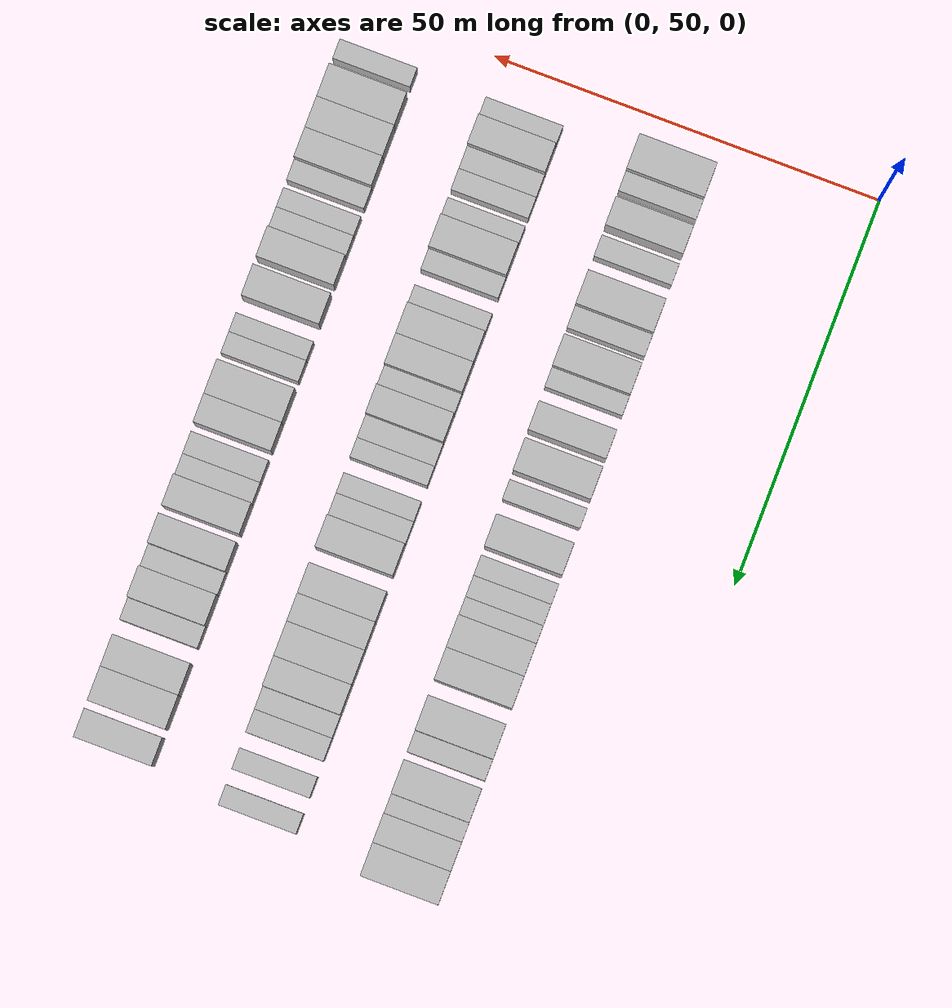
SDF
<sdf version="1.6">
 <world name="default">
  <model name="building_65">
   <static>1</static>
   <pose>25.0000 55.7712 0 0.000000 0.000000 0.000000</pose>
   <link name="link">
    <pose>0 0 4.50 0 0 0</pose>
    <collision name="collision"><geometry><box><size>10.0000 4.4981 9.0000</size></box></geometry></collision>
    <visual name="visual">
     <cast_shadows>0</cast_shadows>
     <geometry><box><size>10.0000 4.4981 9.0000</size></box></geometry>
     <material>
      <script>
       <uri>model://HANNAS_wall/materials/scripts</uri>
       <uri>model://HANNAS_wall/materials/textures</uri>
       <name>vrc/HANNAS_wall</name>
      </script>
     </material>
    </visual>
   </link>
  </model>
  <model name="building_66">
   <static>1</static>
   <pose>25.0000 59.3124 0 0.000000 0.000000 0.000000</pose>
   <link name="link">
    <pose>0 0 3.00 0 0 0</pose>
    <collision name="collision"><geometry><box><size>10.0000 2.5843 6.0000</size></box></geometry></collision>
    <visual name="visual">
     <cast_shadows>0</cast_shadows>
     <geometry><box><size>10.0000 2.5843 6.0000</size></box></geometry>
     <material>
      <script>
       <uri>model://HANNAS_wall/materials/scripts</uri>
       <uri>model://HANNAS_wall/materials/textures</uri>
       <name>vrc/HANNAS_wall</name>
      </script>
     </material>
    </visual>
   </link>
  </model>
  <model name="building_67">
   <static>1</static>
   <pose>25.0000 63.4553 0 0.000000 0.000000 0.000000</pose>
   <link name="link">
    <pose>0 0 4.50 0 0 0</pose>
    <collision name="collision"><geometry><box><size>10.0000 3.7016 9.0000</size></box></geometry></collision>
    <visual name="visual">
     <cast_shadows>0</cast_shadows>
     <geometry><box><size>10.0000 3.7016 9.0000</size></box></geometry>
     <material>
      <script>
       <uri>model://HANNAS_wall/materials/scripts</uri>
       <uri>model://HANNAS_wall/materials/textures</uri>
       <name>vrc/HANNAS_wall</name>
      </script>
     </material>
    </visual>
   </link>
  </model>
  <model name="building_68">
   <static>1</static>
   <pose>25.0000 67.6899 0 0.000000 0.000000 0.000000</pose>
   <link name="link">
    <pose>0 0 3.00 0 0 0</pose>
    <collision name="collision"><geometry><box><size>10.0000 2.7675 6.0000</size></box></geometry></collision>
    <visual name="visual">
     <cast_shadows>0</cast_shadows>
     <geometry><box><size>10.0000 2.7675 6.0000</size></box></geometry>
     <material>
      <script>
       <uri>model://HANNAS_wall/materials/scripts</uri>
       <uri>model://HANNAS_wall/materials/textures</uri>
       <name>vrc/HANNAS_wall</name>
      </script>
     </material>
    </visual>
   </link>
  </model>
  <model name="building_69">
   <static>1</static>
   <pose>25.0000 73.2490 0 0.000000 0.000000 0.000000</pose>
   <link name="link">
    <pose>0 0 4.50 0 0 0</pose>
    <collision name="collision"><geometry><box><size>10.0000 4.3506 9.0000</size></box></geometry></collision>
    <visual name="visual">
     <cast_shadows>0</cast_shadows>
     <geometry><box><size>10.0000 4.3506 9.0000</size></box></geometry>
     <material>
      <script>
       <uri>model://HANNAS_wall/materials/scripts</uri>
       <uri>model://HANNAS_wall/materials/textures</uri>
       <name>vrc/HANNAS_wall</name>
      </script>
     </material>
    </visual>
   </link>
  </model>
  <model name="building_70">
   <static>1</static>
   <pose>25.0000 76.8722 0 0.000000 0.000000 0.000000</pose>
   <link name="link">
    <pose>0 0 3.00 0 0 0</pose>
    <collision name="collision"><geometry><box><size>10.0000 2.8959 6.0000</size></box></geometry></collision>
    <visual name="visual">
     <cast_shadows>0</cast_shadows>
     <geometry><box><size>10.0000 2.8959 6.0000</size></box></geometry>
     <material>
      <script>
       <uri>model://HANNAS_wall/materials/scripts</uri>
       <uri>model://HANNAS_wall/materials/textures</uri>
       <name>vrc/HANNAS_wall</name>
      </script>
     </material>
    </visual>
   </link>
  </model>
  <model name="building_71">
   <static>1</static>
   <pose>25.0000 81.3521 0 0.000000 0.000000 0.000000</pose>
   <link name="link">
    <pose>0 0 4.50 0 0 0</pose>
    <collision name="collision"><geometry><box><size>10.0000 4.0638 9.0000</size></box></geometry></collision>
    <visual name="visual">
     <cast_shadows>0</cast_shadows>
     <geometry><box><size>10.0000 4.0638 9.0000</size></box></geometry>
     <material>
      <script>
       <uri>model://HANNAS_wall/materials/scripts</uri>
       <uri>model://HANNAS_wall/materials/textures</uri>
       <name>vrc/HANNAS_wall</name>
      </script>
     </material>
    </visual>
   </link>
  </model>
  <model name="building_72">
   <static>1</static>
   <pose>25.0000 84.6595 0 0.000000 0.000000 0.000000</pose>
   <link name="link">
    <pose>0 0 3.00 0 0 0</pose>
    <collision name="collision"><geometry><box><size>10.0000 2.5509 6.0000</size></box></geometry></collision>
    <visual name="visual">
     <cast_shadows>0</cast_shadows>
     <geometry><box><size>10.0000 2.5509 6.0000</size></box></geometry>
     <material>
      <script>
       <uri>model://HANNAS_wall/materials/scripts</uri>
       <uri>model://HANNAS_wall/materials/textures</uri>
       <name>vrc/HANNAS_wall</name>
      </script>
     </material>
    </visual>
   </link>
  </model>
  <model name="building_73">
   <static>1</static>
   <pose>25.0000 89.8018 0 0.000000 0.000000 0.000000</pose>
   <link name="link">
    <pose>0 0 4.50 0 0 0</pose>
    <collision name="collision"><geometry><box><size>10.0000 3.7337 9.0000</size></box></geometry></collision>
    <visual name="visual">
     <cast_shadows>0</cast_shadows>
     <geometry><box><size>10.0000 3.7337 9.0000</size></box></geometry>
     <material>
      <script>
       <uri>model://HANNAS_wall/materials/scripts</uri>
       <uri>model://HANNAS_wall/materials/textures</uri>
       <name>vrc/HANNAS_wall</name>
      </script>
     </material>
    </visual>
   </link>
  </model>
  <model name="building_74">
   <static>1</static>
   <pose>25.0000 94.7724 0 0.000000 0.000000 0.000000</pose>
   <link name="link">
    <pose>0 0 4.50 0 0 0</pose>
    <collision name="collision"><geometry><box><size>10.0000 4.2076 9.0000</size></box></geometry></collision>
    <visual name="visual">
     <cast_shadows>0</cast_shadows>
     <geometry><box><size>10.0000 4.2076 9.0000</size></box></geometry>
     <material>
      <script>
       <uri>model://HANNAS_wall/materials/scripts</uri>
       <uri>model://HANNAS_wall/materials/textures</uri>
       <name>vrc/HANNAS_wall</name>
      </script>
     </material>
    </visual>
   </link>
  </model>
  <model name="building_75">
   <static>1</static>
   <pose>25.0000 99.1665 0 0.000000 0.000000 0.000000</pose>
   <link name="link">
    <pose>0 0 3.00 0 0 0</pose>
    <collision name="collision"><geometry><box><size>10.0000 2.5805 6.0000</size></box></geometry></collision>
    <visual name="visual">
     <cast_shadows>0</cast_shadows>
     <geometry><box><size>10.0000 2.5805 6.0000</size></box></geometry>
     <material>
      <script>
       <uri>model://HANNAS_wall/materials/scripts</uri>
       <uri>model://HANNAS_wall/materials/textures</uri>
       <name>vrc/HANNAS_wall</name>
      </script>
     </material>
    </visual>
   </link>
  </model>
  <model name="building_76">
   <static>1</static>
   <pose>25.0000 104.5347 0 0.000000 0.000000 0.000000</pose>
   <link name="link">
    <pose>0 0 4.50 0 0 0</pose>
    <collision name="collision"><geometry><box><size>10.0000 4.1559 9.0000</size></box></geometry></collision>
    <visual name="visual">
     <cast_shadows>0</cast_shadows>
     <geometry><box><size>10.0000 4.1559 9.0000</size></box></geometry>
     <material>
      <script>
       <uri>model://HANNAS_wall/materials/scripts</uri>
       <uri>model://HANNAS_wall/materials/textures</uri>
       <name>vrc/HANNAS_wall</name>
      </script>
     </material>
    </visual>
   </link>
  </model>
  <model name="building_77">
   <static>1</static>
   <pose>25.0000 108.9204 0 0.000000 0.000000 0.000000</pose>
   <link name="link">
    <pose>0 0 3.00 0 0 0</pose>
    <collision name="collision"><geometry><box><size>10.0000 2.6154 6.0000</size></box></geometry></collision>
    <visual name="visual">
     <cast_shadows>0</cast_shadows>
     <geometry><box><size>10.0000 2.6154 6.0000</size></box></geometry>
     <material>
      <script>
       <uri>model://HANNAS_wall/materials/scripts</uri>
       <uri>model://HANNAS_wall/materials/textures</uri>
       <name>vrc/HANNAS_wall</name>
      </script>
     </material>
    </visual>
   </link>
  </model>
  <model name="building_78">
   <static>1</static>
   <pose>25.0000 111.5967 0 0.000000 0.000000 0.000000</pose>
   <link name="link">
    <pose>0 0 3.00 0 0 0</pose>
    <collision name="collision"><geometry><box><size>10.0000 2.7373 6.0000</size></box></geometry></collision>
    <visual name="visual">
     <cast_shadows>0</cast_shadows>
     <geometry><box><size>10.0000 2.7373 6.0000</size></box></geometry>
     <material>
      <script>
       <uri>model://HANNAS_wall/materials/scripts</uri>
       <uri>model://HANNAS_wall/materials/textures</uri>
       <name>vrc/HANNAS_wall</name>
      </script>
     </material>
    </visual>
   </link>
  </model>
  <model name="building_79">
   <static>1</static>
   <pose>25.0000 114.1674 0 0.000000 0.000000 0.000000</pose>
   <link name="link">
    <pose>0 0 3.00 0 0 0</pose>
    <collision name="collision"><geometry><box><size>10.0000 2.4041 6.0000</size></box></geometry></collision>
    <visual name="visual">
     <cast_shadows>0</cast_shadows>
     <geometry><box><size>10.0000 2.4041 6.0000</size></box></geometry>
     <material>
      <script>
       <uri>model://HANNAS_wall/materials/scripts</uri>
       <uri>model://HANNAS_wall/materials/textures</uri>
       <name>vrc/HANNAS_wall</name>
      </script>
     </material>
    </visual>
   </link>
  </model>
  <model name="building_80">
   <static>1</static>
   <pose>25.0000 117.4591 0 0.000000 0.000000 0.000000</pose>
   <link name="link">
    <pose>0 0 4.50 0 0 0</pose>
    <collision name="collision"><geometry><box><size>10.0000 4.1793 9.0000</size></box></geometry></collision>
    <visual name="visual">
     <cast_shadows>0</cast_shadows>
     <geometry><box><size>10.0000 4.1793 9.0000</size></box></geometry>
     <material>
      <script>
       <uri>model://HANNAS_wall/materials/scripts</uri>
       <uri>model://HANNAS_wall/materials/textures</uri>
       <name>vrc/HANNAS_wall</name>
      </script>
     </material>
    </visual>
   </link>
  </model>
  <model name="building_81">
   <static>1</static>
   <pose>25.0000 121.6163 0 0.000000 0.000000 0.000000</pose>
   <link name="link">
    <pose>0 0 4.50 0 0 0</pose>
    <collision name="collision"><geometry><box><size>10.0000 4.1351 9.0000</size></box></geometry></collision>
    <visual name="visual">
     <cast_shadows>0</cast_shadows>
     <geometry><box><size>10.0000 4.1351 9.0000</size></box></geometry>
     <material>
      <script>
       <uri>model://HANNAS_wall/materials/scripts</uri>
       <uri>model://HANNAS_wall/materials/textures</uri>
       <name>vrc/HANNAS_wall</name>
      </script>
     </material>
    </visual>
   </link>
  </model>
  <model name="building_82">
   <static>1</static>
   <pose>25.0000 127.9238 0 0.000000 0.000000 0.000000</pose>
   <link name="link">
    <pose>0 0 4.50 0 0 0</pose>
    <collision name="collision"><geometry><box><size>10.0000 4.4799 9.0000</size></box></geometry></collision>
    <visual name="visual">
     <cast_shadows>0</cast_shadows>
     <geometry><box><size>10.0000 4.4799 9.0000</size></box></geometry>
     <material>
      <script>
       <uri>model://HANNAS_wall/materials/scripts</uri>
       <uri>model://HANNAS_wall/materials/textures</uri>
       <name>vrc/HANNAS_wall</name>
      </script>
     </material>
    </visual>
   </link>
  </model>
  <model name="building_83">
   <static>1</static>
   <pose>25.0000 131.5365 0 0.000000 0.000000 0.000000</pose>
   <link name="link">
    <pose>0 0 3.00 0 0 0</pose>
    <collision name="collision"><geometry><box><size>10.0000 2.7455 6.0000</size></box></geometry></collision>
    <visual name="visual">
     <cast_shadows>0</cast_shadows>
     <geometry><box><size>10.0000 2.7455 6.0000</size></box></geometry>
     <material>
      <script>
       <uri>model://HANNAS_wall/materials/scripts</uri>
       <uri>model://HANNAS_wall/materials/textures</uri>
       <name>vrc/HANNAS_wall</name>
      </script>
     </material>
    </visual>
   </link>
  </model>
  <model name="building_84">
   <static>1</static>
   <pose>25.0000 136.0876 0 0.000000 0.000000 0.000000</pose>
   <link name="link">
    <pose>0 0 4.50 0 0 0</pose>
    <collision name="collision"><geometry><box><size>10.0000 4.3567 9.0000</size></box></geometry></collision>
    <visual name="visual">
     <cast_shadows>0</cast_shadows>
     <geometry><box><size>10.0000 4.3567 9.0000</size></box></geometry>
     <material>
      <script>
       <uri>model://HANNAS_wall/materials/scripts</uri>
       <uri>model://HANNAS_wall/materials/textures</uri>
       <name>vrc/HANNAS_wall</name>
      </script>
     </material>
    </visual>
   </link>
  </model>
  <model name="building_85">
   <static>1</static>
   <pose>25.0000 139.5139 0 0.000000 0.000000 0.000000</pose>
   <link name="link">
    <pose>0 0 3.00 0 0 0</pose>
    <collision name="collision"><geometry><box><size>10.0000 2.4959 6.0000</size></box></geometry></collision>
    <visual name="visual">
     <cast_shadows>0</cast_shadows>
     <geometry><box><size>10.0000 2.4959 6.0000</size></box></geometry>
     <material>
      <script>
       <uri>model://HANNAS_wall/materials/scripts</uri>
       <uri>model://HANNAS_wall/materials/textures</uri>
       <name>vrc/HANNAS_wall</name>
      </script>
     </material>
    </visual>
   </link>
  </model>
  <model name="building_86">
   <static>1</static>
   <pose>25.0000 142.6284 0 0.000000 0.000000 0.000000</pose>
   <link name="link">
    <pose>0 0 4.50 0 0 0</pose>
    <collision name="collision"><geometry><box><size>10.0000 3.7332 9.0000</size></box></geometry></collision>
    <visual name="visual">
     <cast_shadows>0</cast_shadows>
     <geometry><box><size>10.0000 3.7332 9.0000</size></box></geometry>
     <material>
      <script>
       <uri>model://HANNAS_wall/materials/scripts</uri>
       <uri>model://HANNAS_wall/materials/textures</uri>
       <name>vrc/HANNAS_wall</name>
      </script>
     </material>
    </visual>
   </link>
  </model>
  <model name="building_87">
   <static>1</static>
   <pose>25.0000 146.6382 0 0.000000 0.000000 0.000000</pose>
   <link name="link">
    <pose>0 0 4.50 0 0 0</pose>
    <collision name="collision"><geometry><box><size>10.0000 4.2864 9.0000</size></box></geometry></collision>
    <visual name="visual">
     <cast_shadows>0</cast_shadows>
     <geometry><box><size>10.0000 4.2864 9.0000</size></box></geometry>
     <material>
      <script>
       <uri>model://HANNAS_wall/materials/scripts</uri>
       <uri>model://HANNAS_wall/materials/textures</uri>
       <name>vrc/HANNAS_wall</name>
      </script>
     </material>
    </visual>
   </link>
  </model>
  <model name="building_189">
   <static>1</static>
   <pose>44.0000 56.8667 0 0.000000 0.000000 0.000000</pose>
   <link name="link">
    <pose>0 0 3.00 0 0 0</pose>
    <collision name="collision"><geometry><box><size>10.0000 2.5228 6.0000</size></box></geometry></collision>
    <visual name="visual">
     <cast_shadows>0</cast_shadows>
     <geometry><box><size>10.0000 2.5228 6.0000</size></box></geometry>
     <material>
      <script>
       <uri>model://HANNAS_wall/materials/scripts</uri>
       <uri>model://HANNAS_wall/materials/textures</uri>
       <name>vrc/HANNAS_wall</name>
      </script>
     </material>
    </visual>
   </link>
  </model>
  <model name="building_190">
   <static>1</static>
   <pose>44.0000 60.0348 0 0.000000 0.000000 0.000000</pose>
   <link name="link">
    <pose>0 0 4.50 0 0 0</pose>
    <collision name="collision"><geometry><box><size>10.0000 3.8135 9.0000</size></box></geometry></collision>
    <visual name="visual">
     <cast_shadows>0</cast_shadows>
     <geometry><box><size>10.0000 3.8135 9.0000</size></box></geometry>
     <material>
      <script>
       <uri>model://HANNAS_wall/materials/scripts</uri>
       <uri>model://HANNAS_wall/materials/textures</uri>
       <name>vrc/HANNAS_wall</name>
      </script>
     </material>
    </visual>
   </link>
  </model>
  <model name="building_191">
   <static>1</static>
   <pose>44.0000 63.4010 0 0.000000 0.000000 0.000000</pose>
   <link name="link">
    <pose>0 0 3.00 0 0 0</pose>
    <collision name="collision"><geometry><box><size>10.0000 2.9190 6.0000</size></box></geometry></collision>
    <visual name="visual">
     <cast_shadows>0</cast_shadows>
     <geometry><box><size>10.0000 2.9190 6.0000</size></box></geometry>
     <material>
      <script>
       <uri>model://HANNAS_wall/materials/scripts</uri>
       <uri>model://HANNAS_wall/materials/textures</uri>
       <name>vrc/HANNAS_wall</name>
      </script>
     </material>
    </visual>
   </link>
  </model>
  <model name="building_192">
   <static>1</static>
   <pose>44.0000 66.2390 0 0.000000 0.000000 0.000000</pose>
   <link name="link">
    <pose>0 0 3.00 0 0 0</pose>
    <collision name="collision"><geometry><box><size>10.0000 2.7570 6.0000</size></box></geometry></collision>
    <visual name="visual">
     <cast_shadows>0</cast_shadows>
     <geometry><box><size>10.0000 2.7570 6.0000</size></box></geometry>
     <material>
      <script>
       <uri>model://HANNAS_wall/materials/scripts</uri>
       <uri>model://HANNAS_wall/materials/textures</uri>
       <name>vrc/HANNAS_wall</name>
      </script>
     </material>
    </visual>
   </link>
  </model>
  <model name="building_193">
   <static>1</static>
   <pose>44.0000 69.8181 0 0.000000 0.000000 0.000000</pose>
   <link name="link">
    <pose>0 0 3.00 0 0 0</pose>
    <collision name="collision"><geometry><box><size>10.0000 2.4012 6.0000</size></box></geometry></collision>
    <visual name="visual">
     <cast_shadows>0</cast_shadows>
     <geometry><box><size>10.0000 2.4012 6.0000</size></box></geometry>
     <material>
      <script>
       <uri>model://HANNAS_wall/materials/scripts</uri>
       <uri>model://HANNAS_wall/materials/textures</uri>
       <name>vrc/HANNAS_wall</name>
      </script>
     </material>
    </visual>
   </link>
  </model>
  <model name="building_194">
   <static>1</static>
   <pose>44.0000 73.1180 0 0.000000 0.000000 0.000000</pose>
   <link name="link">
    <pose>0 0 4.50 0 0 0</pose>
    <collision name="collision"><geometry><box><size>10.0000 4.1986 9.0000</size></box></geometry></collision>
    <visual name="visual">
     <cast_shadows>0</cast_shadows>
     <geometry><box><size>10.0000 4.1986 9.0000</size></box></geometry>
     <material>
      <script>
       <uri>model://HANNAS_wall/materials/scripts</uri>
       <uri>model://HANNAS_wall/materials/textures</uri>
       <name>vrc/HANNAS_wall</name>
      </script>
     </material>
    </visual>
   </link>
  </model>
  <model name="building_195">
   <static>1</static>
   <pose>44.0000 76.5718 0 0.000000 0.000000 0.000000</pose>
   <link name="link">
    <pose>0 0 3.00 0 0 0</pose>
    <collision name="collision"><geometry><box><size>10.0000 2.7089 6.0000</size></box></geometry></collision>
    <visual name="visual">
     <cast_shadows>0</cast_shadows>
     <geometry><box><size>10.0000 2.7089 6.0000</size></box></geometry>
     <material>
      <script>
       <uri>model://HANNAS_wall/materials/scripts</uri>
       <uri>model://HANNAS_wall/materials/textures</uri>
       <name>vrc/HANNAS_wall</name>
      </script>
     </material>
    </visual>
   </link>
  </model>
  <model name="building_196">
   <static>1</static>
   <pose>44.0000 81.1582 0 0.000000 0.000000 0.000000</pose>
   <link name="link">
    <pose>0 0 3.00 0 0 0</pose>
    <collision name="collision"><geometry><box><size>10.0000 2.4639 6.0000</size></box></geometry></collision>
    <visual name="visual">
     <cast_shadows>0</cast_shadows>
     <geometry><box><size>10.0000 2.4639 6.0000</size></box></geometry>
     <material>
      <script>
       <uri>model://HANNAS_wall/materials/scripts</uri>
       <uri>model://HANNAS_wall/materials/textures</uri>
       <name>vrc/HANNAS_wall</name>
      </script>
     </material>
    </visual>
   </link>
  </model>
  <model name="building_197">
   <static>1</static>
   <pose>44.0000 84.3775 0 0.000000 0.000000 0.000000</pose>
   <link name="link">
    <pose>0 0 4.50 0 0 0</pose>
    <collision name="collision"><geometry><box><size>10.0000 3.9747 9.0000</size></box></geometry></collision>
    <visual name="visual">
     <cast_shadows>0</cast_shadows>
     <geometry><box><size>10.0000 3.9747 9.0000</size></box></geometry>
     <material>
      <script>
       <uri>model://HANNAS_wall/materials/scripts</uri>
       <uri>model://HANNAS_wall/materials/textures</uri>
       <name>vrc/HANNAS_wall</name>
      </script>
     </material>
    </visual>
   </link>
  </model>
  <model name="building_198">
   <static>1</static>
   <pose>44.0000 88.3245 0 0.000000 0.000000 0.000000</pose>
   <link name="link">
    <pose>0 0 4.50 0 0 0</pose>
    <collision name="collision"><geometry><box><size>10.0000 3.9193 9.0000</size></box></geometry></collision>
    <visual name="visual">
     <cast_shadows>0</cast_shadows>
     <geometry><box><size>10.0000 3.9193 9.0000</size></box></geometry>
     <material>
      <script>
       <uri>model://HANNAS_wall/materials/scripts</uri>
       <uri>model://HANNAS_wall/materials/textures</uri>
       <name>vrc/HANNAS_wall</name>
      </script>
     </material>
    </visual>
   </link>
  </model>
  <model name="building_199">
   <static>1</static>
   <pose>44.0000 91.6055 0 0.000000 0.000000 0.000000</pose>
   <link name="link">
    <pose>0 0 3.00 0 0 0</pose>
    <collision name="collision"><geometry><box><size>10.0000 2.6427 6.0000</size></box></geometry></collision>
    <visual name="visual">
     <cast_shadows>0</cast_shadows>
     <geometry><box><size>10.0000 2.6427 6.0000</size></box></geometry>
     <material>
      <script>
       <uri>model://HANNAS_wall/materials/scripts</uri>
       <uri>model://HANNAS_wall/materials/textures</uri>
       <name>vrc/HANNAS_wall</name>
      </script>
     </material>
    </visual>
   </link>
  </model>
  <model name="building_200">
   <static>1</static>
   <pose>44.0000 94.7963 0 0.000000 0.000000 0.000000</pose>
   <link name="link">
    <pose>0 0 4.50 0 0 0</pose>
    <collision name="collision"><geometry><box><size>10.0000 3.7388 9.0000</size></box></geometry></collision>
    <visual name="visual">
     <cast_shadows>0</cast_shadows>
     <geometry><box><size>10.0000 3.7388 9.0000</size></box></geometry>
     <material>
      <script>
       <uri>model://HANNAS_wall/materials/scripts</uri>
       <uri>model://HANNAS_wall/materials/textures</uri>
       <name>vrc/HANNAS_wall</name>
      </script>
     </material>
    </visual>
   </link>
  </model>
  <model name="building_201">
   <static>1</static>
   <pose>44.0000 98.1436 0 0.000000 0.000000 0.000000</pose>
   <link name="link">
    <pose>0 0 3.00 0 0 0</pose>
    <collision name="collision"><geometry><box><size>10.0000 2.9559 6.0000</size></box></geometry></collision>
    <visual name="visual">
     <cast_shadows>0</cast_shadows>
     <geometry><box><size>10.0000 2.9559 6.0000</size></box></geometry>
     <material>
      <script>
       <uri>model://HANNAS_wall/materials/scripts</uri>
       <uri>model://HANNAS_wall/materials/textures</uri>
       <name>vrc/HANNAS_wall</name>
      </script>
     </material>
    </visual>
   </link>
  </model>
  <model name="building_202">
   <static>1</static>
   <pose>44.0000 100.8869 0 0.000000 0.000000 0.000000</pose>
   <link name="link">
    <pose>0 0 3.00 0 0 0</pose>
    <collision name="collision"><geometry><box><size>10.0000 2.5307 6.0000</size></box></geometry></collision>
    <visual name="visual">
     <cast_shadows>0</cast_shadows>
     <geometry><box><size>10.0000 2.5307 6.0000</size></box></geometry>
     <material>
      <script>
       <uri>model://HANNAS_wall/materials/scripts</uri>
       <uri>model://HANNAS_wall/materials/textures</uri>
       <name>vrc/HANNAS_wall</name>
      </script>
     </material>
    </visual>
   </link>
  </model>
  <model name="building_203">
   <static>1</static>
   <pose>44.0000 105.4587 0 0.000000 0.000000 0.000000</pose>
   <link name="link">
    <pose>0 0 3.00 0 0 0</pose>
    <collision name="collision"><geometry><box><size>10.0000 2.6129 6.0000</size></box></geometry></collision>
    <visual name="visual">
     <cast_shadows>0</cast_shadows>
     <geometry><box><size>10.0000 2.6129 6.0000</size></box></geometry>
     <material>
      <script>
       <uri>model://HANNAS_wall/materials/scripts</uri>
       <uri>model://HANNAS_wall/materials/textures</uri>
       <name>vrc/HANNAS_wall</name>
      </script>
     </material>
    </visual>
   </link>
  </model>
  <model name="building_204">
   <static>1</static>
   <pose>44.0000 108.2291 0 0.000000 0.000000 0.000000</pose>
   <link name="link">
    <pose>0 0 3.00 0 0 0</pose>
    <collision name="collision"><geometry><box><size>10.0000 2.9280 6.0000</size></box></geometry></collision>
    <visual name="visual">
     <cast_shadows>0</cast_shadows>
     <geometry><box><size>10.0000 2.9280 6.0000</size></box></geometry>
     <material>
      <script>
       <uri>model://HANNAS_wall/materials/scripts</uri>
       <uri>model://HANNAS_wall/materials/textures</uri>
       <name>vrc/HANNAS_wall</name>
      </script>
     </material>
    </visual>
   </link>
  </model>
  <model name="building_205">
   <static>1</static>
   <pose>44.0000 111.7698 0 0.000000 0.000000 0.000000</pose>
   <link name="link">
    <pose>0 0 4.50 0 0 0</pose>
    <collision name="collision"><geometry><box><size>10.0000 4.1534 9.0000</size></box></geometry></collision>
    <visual name="visual">
     <cast_shadows>0</cast_shadows>
     <geometry><box><size>10.0000 4.1534 9.0000</size></box></geometry>
     <material>
      <script>
       <uri>model://HANNAS_wall/materials/scripts</uri>
       <uri>model://HANNAS_wall/materials/textures</uri>
       <name>vrc/HANNAS_wall</name>
      </script>
     </material>
    </visual>
   </link>
  </model>
  <model name="building_206">
   <static>1</static>
   <pose>44.0000 117.8041 0 0.000000 0.000000 0.000000</pose>
   <link name="link">
    <pose>0 0 4.50 0 0 0</pose>
    <collision name="collision"><geometry><box><size>10.0000 3.9151 9.0000</size></box></geometry></collision>
    <visual name="visual">
     <cast_shadows>0</cast_shadows>
     <geometry><box><size>10.0000 3.9151 9.0000</size></box></geometry>
     <material>
      <script>
       <uri>model://HANNAS_wall/materials/scripts</uri>
       <uri>model://HANNAS_wall/materials/textures</uri>
       <name>vrc/HANNAS_wall</name>
      </script>
     </material>
    </visual>
   </link>
  </model>
  <model name="building_207">
   <static>1</static>
   <pose>44.0000 121.5648 0 0.000000 0.000000 0.000000</pose>
   <link name="link">
    <pose>0 0 4.50 0 0 0</pose>
    <collision name="collision"><geometry><box><size>10.0000 3.6065 9.0000</size></box></geometry></collision>
    <visual name="visual">
     <cast_shadows>0</cast_shadows>
     <geometry><box><size>10.0000 3.6065 9.0000</size></box></geometry>
     <material>
      <script>
       <uri>model://HANNAS_wall/materials/scripts</uri>
       <uri>model://HANNAS_wall/materials/textures</uri>
       <name>vrc/HANNAS_wall</name>
      </script>
     </material>
    </visual>
   </link>
  </model>
  <model name="building_208">
   <static>1</static>
   <pose>44.0000 125.5822 0 0.000000 0.000000 0.000000</pose>
   <link name="link">
    <pose>0 0 4.50 0 0 0</pose>
    <collision name="collision"><geometry><box><size>10.0000 4.4283 9.0000</size></box></geometry></collision>
    <visual name="visual">
     <cast_shadows>0</cast_shadows>
     <geometry><box><size>10.0000 4.4283 9.0000</size></box></geometry>
     <material>
      <script>
       <uri>model://HANNAS_wall/materials/scripts</uri>
       <uri>model://HANNAS_wall/materials/textures</uri>
       <name>vrc/HANNAS_wall</name>
      </script>
     </material>
    </visual>
   </link>
  </model>
  <model name="building_209">
   <static>1</static>
   <pose>44.0000 129.7283 0 0.000000 0.000000 0.000000</pose>
   <link name="link">
    <pose>0 0 4.50 0 0 0</pose>
    <collision name="collision"><geometry><box><size>10.0000 3.8639 9.0000</size></box></geometry></collision>
    <visual name="visual">
     <cast_shadows>0</cast_shadows>
     <geometry><box><size>10.0000 3.8639 9.0000</size></box></geometry>
     <material>
      <script>
       <uri>model://HANNAS_wall/materials/scripts</uri>
       <uri>model://HANNAS_wall/materials/textures</uri>
       <name>vrc/HANNAS_wall</name>
      </script>
     </material>
    </visual>
   </link>
  </model>
  <model name="building_210">
   <static>1</static>
   <pose>44.0000 133.1142 0 0.000000 0.000000 0.000000</pose>
   <link name="link">
    <pose>0 0 3.00 0 0 0</pose>
    <collision name="collision"><geometry><box><size>10.0000 2.9078 6.0000</size></box></geometry></collision>
    <visual name="visual">
     <cast_shadows>0</cast_shadows>
     <geometry><box><size>10.0000 2.9078 6.0000</size></box></geometry>
     <material>
      <script>
       <uri>model://HANNAS_wall/materials/scripts</uri>
       <uri>model://HANNAS_wall/materials/textures</uri>
       <name>vrc/HANNAS_wall</name>
      </script>
     </material>
    </visual>
   </link>
  </model>
  <model name="building_211">
   <static>1</static>
   <pose>44.0000 136.0530 0 0.000000 0.000000 0.000000</pose>
   <link name="link">
    <pose>0 0 3.00 0 0 0</pose>
    <collision name="collision"><geometry><box><size>10.0000 2.9697 6.0000</size></box></geometry></collision>
    <visual name="visual">
     <cast_shadows>0</cast_shadows>
     <geometry><box><size>10.0000 2.9697 6.0000</size></box></geometry>
     <material>
      <script>
       <uri>model://HANNAS_wall/materials/scripts</uri>
       <uri>model://HANNAS_wall/materials/textures</uri>
       <name>vrc/HANNAS_wall</name>
      </script>
     </material>
    </visual>
   </link>
  </model>
  <model name="building_212">
   <static>1</static>
   <pose>44.0000 140.8919 0 0.000000 0.000000 0.000000</pose>
   <link name="link">
    <pose>0 0 3.00 0 0 0</pose>
    <collision name="collision"><geometry><box><size>10.0000 2.7082 6.0000</size></box></geometry></collision>
    <visual name="visual">
     <cast_shadows>0</cast_shadows>
     <geometry><box><size>10.0000 2.7082 6.0000</size></box></geometry>
     <material>
      <script>
       <uri>model://HANNAS_wall/materials/scripts</uri>
       <uri>model://HANNAS_wall/materials/textures</uri>
       <name>vrc/HANNAS_wall</name>
      </script>
     </material>
    </visual>
   </link>
  </model>
  <model name="building_213">
   <static>1</static>
   <pose>44.0000 145.5555 0 0.000000 0.000000 0.000000</pose>
   <link name="link">
    <pose>0 0 3.00 0 0 0</pose>
    <collision name="collision"><geometry><box><size>10.0000 2.6189 6.0000</size></box></geometry></collision>
    <visual name="visual">
     <cast_shadows>0</cast_shadows>
     <geometry><box><size>10.0000 2.6189 6.0000</size></box></geometry>
     <material>
      <script>
       <uri>model://HANNAS_wall/materials/scripts</uri>
       <uri>model://HANNAS_wall/materials/textures</uri>
       <name>vrc/HANNAS_wall</name>
      </script>
     </material>
    </visual>
   </link>
  </model>
  <model name="building_306">
   <static>1</static>
   <pose>63.0000 56.4946 0 0.000000 0.000000 0.000000</pose>
   <link name="link">
    <pose>0 0 3.00 0 0 0</pose>
    <collision name="collision"><geometry><box><size>10.0000 2.5064 6.0000</size></box></geometry></collision>
    <visual name="visual">
     <cast_shadows>0</cast_shadows>
     <geometry><box><size>10.0000 2.5064 6.0000</size></box></geometry>
     <material>
      <script>
       <uri>model://HANNAS_wall/materials/scripts</uri>
       <uri>model://HANNAS_wall/materials/textures</uri>
       <name>vrc/HANNAS_wall</name>
      </script>
     </material>
    </visual>
   </link>
  </model>
  <model name="building_307">
   <static>1</static>
   <pose>63.0000 60.8752 0 0.000000 0.000000 0.000000</pose>
   <link name="link">
    <pose>0 0 4.50 0 0 0</pose>
    <collision name="collision"><geometry><box><size>10.0000 4.2548 9.0000</size></box></geometry></collision>
    <visual name="visual">
     <cast_shadows>0</cast_shadows>
     <geometry><box><size>10.0000 4.2548 9.0000</size></box></geometry>
     <material>
      <script>
       <uri>model://HANNAS_wall/materials/scripts</uri>
       <uri>model://HANNAS_wall/materials/textures</uri>
       <name>vrc/HANNAS_wall</name>
      </script>
     </material>
    </visual>
   </link>
  </model>
  <model name="building_308">
   <static>1</static>
   <pose>63.0000 64.9980 0 0.000000 0.000000 0.000000</pose>
   <link name="link">
    <pose>0 0 4.50 0 0 0</pose>
    <collision name="collision"><geometry><box><size>10.0000 3.9908 9.0000</size></box></geometry></collision>
    <visual name="visual">
     <cast_shadows>0</cast_shadows>
     <geometry><box><size>10.0000 3.9908 9.0000</size></box></geometry>
     <material>
      <script>
       <uri>model://HANNAS_wall/materials/scripts</uri>
       <uri>model://HANNAS_wall/materials/textures</uri>
       <name>vrc/HANNAS_wall</name>
      </script>
     </material>
    </visual>
   </link>
  </model>
  <model name="building_309">
   <static>1</static>
   <pose>63.0000 68.9042 0 0.000000 0.000000 0.000000</pose>
   <link name="link">
    <pose>0 0 4.50 0 0 0</pose>
    <collision name="collision"><geometry><box><size>10.0000 3.8216 9.0000</size></box></geometry></collision>
    <visual name="visual">
     <cast_shadows>0</cast_shadows>
     <geometry><box><size>10.0000 3.8216 9.0000</size></box></geometry>
     <material>
      <script>
       <uri>model://HANNAS_wall/materials/scripts</uri>
       <uri>model://HANNAS_wall/materials/textures</uri>
       <name>vrc/HANNAS_wall</name>
      </script>
     </material>
    </visual>
   </link>
  </model>
  <model name="building_310">
   <static>1</static>
   <pose>63.0000 72.1578 0 0.000000 0.000000 0.000000</pose>
   <link name="link">
    <pose>0 0 3.00 0 0 0</pose>
    <collision name="collision"><geometry><box><size>10.0000 2.6857 6.0000</size></box></geometry></collision>
    <visual name="visual">
     <cast_shadows>0</cast_shadows>
     <geometry><box><size>10.0000 2.6857 6.0000</size></box></geometry>
     <material>
      <script>
       <uri>model://HANNAS_wall/materials/scripts</uri>
       <uri>model://HANNAS_wall/materials/textures</uri>
       <name>vrc/HANNAS_wall</name>
      </script>
     </material>
    </visual>
   </link>
  </model>
  <model name="building_311">
   <static>1</static>
   <pose>63.0000 75.7440 0 0.000000 0.000000 0.000000</pose>
   <link name="link">
    <pose>0 0 3.00 0 0 0</pose>
    <collision name="collision"><geometry><box><size>10.0000 2.4868 6.0000</size></box></geometry></collision>
    <visual name="visual">
     <cast_shadows>0</cast_shadows>
     <geometry><box><size>10.0000 2.4868 6.0000</size></box></geometry>
     <material>
      <script>
       <uri>model://HANNAS_wall/materials/scripts</uri>
       <uri>model://HANNAS_wall/materials/textures</uri>
       <name>vrc/HANNAS_wall</name>
      </script>
     </material>
    </visual>
   </link>
  </model>
  <model name="building_312">
   <static>1</static>
   <pose>63.0000 78.3641 0 0.000000 0.000000 0.000000</pose>
   <link name="link">
    <pose>0 0 3.00 0 0 0</pose>
    <collision name="collision"><geometry><box><size>10.0000 2.7535 6.0000</size></box></geometry></collision>
    <visual name="visual">
     <cast_shadows>0</cast_shadows>
     <geometry><box><size>10.0000 2.7535 6.0000</size></box></geometry>
     <material>
      <script>
       <uri>model://HANNAS_wall/materials/scripts</uri>
       <uri>model://HANNAS_wall/materials/textures</uri>
       <name>vrc/HANNAS_wall</name>
      </script>
     </material>
    </visual>
   </link>
  </model>
  <model name="building_313">
   <static>1</static>
   <pose>63.0000 81.6979 0 0.000000 0.000000 0.000000</pose>
   <link name="link">
    <pose>0 0 4.50 0 0 0</pose>
    <collision name="collision"><geometry><box><size>10.0000 3.9141 9.0000</size></box></geometry></collision>
    <visual name="visual">
     <cast_shadows>0</cast_shadows>
     <geometry><box><size>10.0000 3.9141 9.0000</size></box></geometry>
     <material>
      <script>
       <uri>model://HANNAS_wall/materials/scripts</uri>
       <uri>model://HANNAS_wall/materials/textures</uri>
       <name>vrc/HANNAS_wall</name>
      </script>
     </material>
    </visual>
   </link>
  </model>
  <model name="building_314">
   <static>1</static>
   <pose>63.0000 86.6673 0 0.000000 0.000000 0.000000</pose>
   <link name="link">
    <pose>0 0 4.50 0 0 0</pose>
    <collision name="collision"><geometry><box><size>10.0000 4.0246 9.0000</size></box></geometry></collision>
    <visual name="visual">
     <cast_shadows>0</cast_shadows>
     <geometry><box><size>10.0000 4.0246 9.0000</size></box></geometry>
     <material>
      <script>
       <uri>model://HANNAS_wall/materials/scripts</uri>
       <uri>model://HANNAS_wall/materials/textures</uri>
       <name>vrc/HANNAS_wall</name>
      </script>
     </material>
    </visual>
   </link>
  </model>
  <model name="building_315">
   <static>1</static>
   <pose>63.0000 91.8994 0 0.000000 0.000000 0.000000</pose>
   <link name="link">
    <pose>0 0 3.00 0 0 0</pose>
    <collision name="collision"><geometry><box><size>10.0000 2.4396 6.0000</size></box></geometry></collision>
    <visual name="visual">
     <cast_shadows>0</cast_shadows>
     <geometry><box><size>10.0000 2.4396 6.0000</size></box></geometry>
     <material>
      <script>
       <uri>model://HANNAS_wall/materials/scripts</uri>
       <uri>model://HANNAS_wall/materials/textures</uri>
       <name>vrc/HANNAS_wall</name>
      </script>
     </material>
    </visual>
   </link>
  </model>
  <model name="building_316">
   <static>1</static>
   <pose>63.0000 94.5002 0 0.000000 0.000000 0.000000</pose>
   <link name="link">
    <pose>0 0 3.00 0 0 0</pose>
    <collision name="collision"><geometry><box><size>10.0000 2.7621 6.0000</size></box></geometry></collision>
    <visual name="visual">
     <cast_shadows>0</cast_shadows>
     <geometry><box><size>10.0000 2.7621 6.0000</size></box></geometry>
     <material>
      <script>
       <uri>model://HANNAS_wall/materials/scripts</uri>
       <uri>model://HANNAS_wall/materials/textures</uri>
       <name>vrc/HANNAS_wall</name>
      </script>
     </material>
    </visual>
   </link>
  </model>
  <model name="building_317">
   <static>1</static>
   <pose>63.0000 99.0933 0 0.000000 0.000000 0.000000</pose>
   <link name="link">
    <pose>0 0 4.50 0 0 0</pose>
    <collision name="collision"><geometry><box><size>10.0000 4.4240 9.0000</size></box></geometry></collision>
    <visual name="visual">
     <cast_shadows>0</cast_shadows>
     <geometry><box><size>10.0000 4.4240 9.0000</size></box></geometry>
     <material>
      <script>
       <uri>model://HANNAS_wall/materials/scripts</uri>
       <uri>model://HANNAS_wall/materials/textures</uri>
       <name>vrc/HANNAS_wall</name>
      </script>
     </material>
    </visual>
   </link>
  </model>
  <model name="building_318">
   <static>1</static>
   <pose>63.0000 103.1434 0 0.000000 0.000000 0.000000</pose>
   <link name="link">
    <pose>0 0 4.50 0 0 0</pose>
    <collision name="collision"><geometry><box><size>10.0000 3.6762 9.0000</size></box></geometry></collision>
    <visual name="visual">
     <cast_shadows>0</cast_shadows>
     <geometry><box><size>10.0000 3.6762 9.0000</size></box></geometry>
     <material>
      <script>
       <uri>model://HANNAS_wall/materials/scripts</uri>
       <uri>model://HANNAS_wall/materials/textures</uri>
       <name>vrc/HANNAS_wall</name>
      </script>
     </material>
    </visual>
   </link>
  </model>
  <model name="building_319">
   <static>1</static>
   <pose>63.0000 107.4162 0 0.000000 0.000000 0.000000</pose>
   <link name="link">
    <pose>0 0 3.00 0 0 0</pose>
    <collision name="collision"><geometry><box><size>10.0000 2.8695 6.0000</size></box></geometry></collision>
    <visual name="visual">
     <cast_shadows>0</cast_shadows>
     <geometry><box><size>10.0000 2.8695 6.0000</size></box></geometry>
     <material>
      <script>
       <uri>model://HANNAS_wall/materials/scripts</uri>
       <uri>model://HANNAS_wall/materials/textures</uri>
       <name>vrc/HANNAS_wall</name>
      </script>
     </material>
    </visual>
   </link>
  </model>
  <model name="building_320">
   <static>1</static>
   <pose>63.0000 110.2408 0 0.000000 0.000000 0.000000</pose>
   <link name="link">
    <pose>0 0 3.00 0 0 0</pose>
    <collision name="collision"><geometry><box><size>10.0000 2.7796 6.0000</size></box></geometry></collision>
    <visual name="visual">
     <cast_shadows>0</cast_shadows>
     <geometry><box><size>10.0000 2.7796 6.0000</size></box></geometry>
     <material>
      <script>
       <uri>model://HANNAS_wall/materials/scripts</uri>
       <uri>model://HANNAS_wall/materials/textures</uri>
       <name>vrc/HANNAS_wall</name>
      </script>
     </material>
    </visual>
   </link>
  </model>
  <model name="building_321">
   <static>1</static>
   <pose>63.0000 113.6476 0 0.000000 0.000000 0.000000</pose>
   <link name="link">
    <pose>0 0 4.50 0 0 0</pose>
    <collision name="collision"><geometry><box><size>10.0000 4.0342 9.0000</size></box></geometry></collision>
    <visual name="visual">
     <cast_shadows>0</cast_shadows>
     <geometry><box><size>10.0000 4.0342 9.0000</size></box></geometry>
     <material>
      <script>
       <uri>model://HANNAS_wall/materials/scripts</uri>
       <uri>model://HANNAS_wall/materials/textures</uri>
       <name>vrc/HANNAS_wall</name>
      </script>
     </material>
    </visual>
   </link>
  </model>
  <model name="building_322">
   <static>1</static>
   <pose>63.0000 118.5666 0 0.000000 0.000000 0.000000</pose>
   <link name="link">
    <pose>0 0 4.50 0 0 0</pose>
    <collision name="collision"><geometry><box><size>10.0000 3.8038 9.0000</size></box></geometry></collision>
    <visual name="visual">
     <cast_shadows>0</cast_shadows>
     <geometry><box><size>10.0000 3.8038 9.0000</size></box></geometry>
     <material>
      <script>
       <uri>model://HANNAS_wall/materials/scripts</uri>
       <uri>model://HANNAS_wall/materials/textures</uri>
       <name>vrc/HANNAS_wall</name>
      </script>
     </material>
    </visual>
   </link>
  </model>
  <model name="building_323">
   <static>1</static>
   <pose>63.0000 121.9288 0 0.000000 0.000000 0.000000</pose>
   <link name="link">
    <pose>0 0 3.00 0 0 0</pose>
    <collision name="collision"><geometry><box><size>10.0000 2.9206 6.0000</size></box></geometry></collision>
    <visual name="visual">
     <cast_shadows>0</cast_shadows>
     <geometry><box><size>10.0000 2.9206 6.0000</size></box></geometry>
     <material>
      <script>
       <uri>model://HANNAS_wall/materials/scripts</uri>
       <uri>model://HANNAS_wall/materials/textures</uri>
       <name>vrc/HANNAS_wall</name>
      </script>
     </material>
    </visual>
   </link>
  </model>
  <model name="building_324">
   <static>1</static>
   <pose>63.0000 125.3946 0 0.000000 0.000000 0.000000</pose>
   <link name="link">
    <pose>0 0 4.50 0 0 0</pose>
    <collision name="collision"><geometry><box><size>10.0000 4.0109 9.0000</size></box></geometry></collision>
    <visual name="visual">
     <cast_shadows>0</cast_shadows>
     <geometry><box><size>10.0000 4.0109 9.0000</size></box></geometry>
     <material>
      <script>
       <uri>model://HANNAS_wall/materials/scripts</uri>
       <uri>model://HANNAS_wall/materials/textures</uri>
       <name>vrc/HANNAS_wall</name>
      </script>
     </material>
    </visual>
   </link>
  </model>
  <model name="building_325">
   <static>1</static>
   <pose>63.0000 128.8033 0 0.000000 0.000000 0.000000</pose>
   <link name="link">
    <pose>0 0 3.00 0 0 0</pose>
    <collision name="collision"><geometry><box><size>10.0000 2.8065 6.0000</size></box></geometry></collision>
    <visual name="visual">
     <cast_shadows>0</cast_shadows>
     <geometry><box><size>10.0000 2.8065 6.0000</size></box></geometry>
     <material>
      <script>
       <uri>model://HANNAS_wall/materials/scripts</uri>
       <uri>model://HANNAS_wall/materials/textures</uri>
       <name>vrc/HANNAS_wall</name>
      </script>
     </material>
    </visual>
   </link>
  </model>
  <model name="building_326">
   <static>1</static>
   <pose>63.0000 134.2449 0 0.000000 0.000000 0.000000</pose>
   <link name="link">
    <pose>0 0 4.50 0 0 0</pose>
    <collision name="collision"><geometry><box><size>10.0000 4.0768 9.0000</size></box></geometry></collision>
    <visual name="visual">
     <cast_shadows>0</cast_shadows>
     <geometry><box><size>10.0000 4.0768 9.0000</size></box></geometry>
     <material>
      <script>
       <uri>model://HANNAS_wall/materials/scripts</uri>
       <uri>model://HANNAS_wall/materials/textures</uri>
       <name>vrc/HANNAS_wall</name>
      </script>
     </material>
    </visual>
   </link>
  </model>
  <model name="building_327">
   <static>1</static>
   <pose>63.0000 138.4824 0 0.000000 0.000000 0.000000</pose>
   <link name="link">
    <pose>0 0 4.50 0 0 0</pose>
    <collision name="collision"><geometry><box><size>10.0000 4.3982 9.0000</size></box></geometry></collision>
    <visual name="visual">
     <cast_shadows>0</cast_shadows>
     <geometry><box><size>10.0000 4.3982 9.0000</size></box></geometry>
     <material>
      <script>
       <uri>model://HANNAS_wall/materials/scripts</uri>
       <uri>model://HANNAS_wall/materials/textures</uri>
       <name>vrc/HANNAS_wall</name>
      </script>
     </material>
    </visual>
   </link>
  </model>
  <model name="building_328">
   <static>1</static>
   <pose>63.0000 143.5128 0 0.000000 0.000000 0.000000</pose>
   <link name="link">
    <pose>0 0 4.50 0 0 0</pose>
    <collision name="collision"><geometry><box><size>10.0000 3.6624 9.0000</size></box></geometry></collision>
    <visual name="visual">
     <cast_shadows>0</cast_shadows>
     <geometry><box><size>10.0000 3.6624 9.0000</size></box></geometry>
     <material>
      <script>
       <uri>model://HANNAS_wall/materials/scripts</uri>
       <uri>model://HANNAS_wall/materials/textures</uri>
       <name>vrc/HANNAS_wall</name>
      </script>
     </material>
    </visual>
   </link>
  </model>
 </world>
</sdf>
